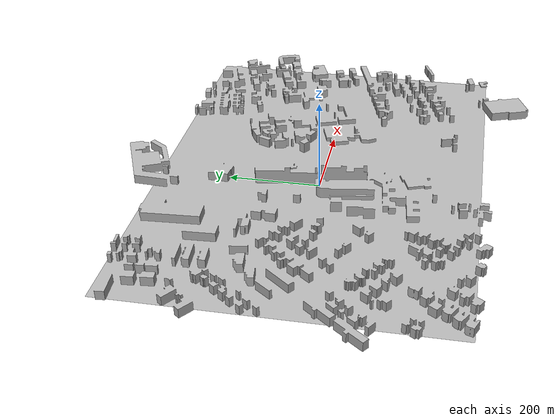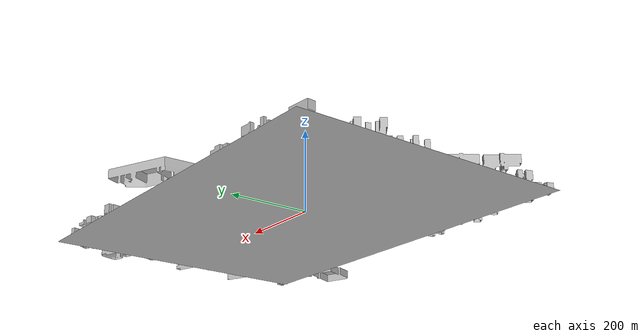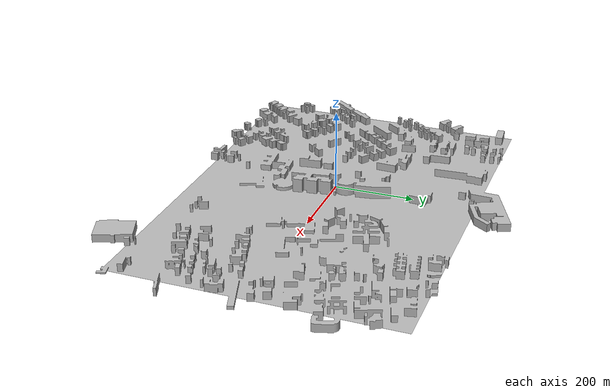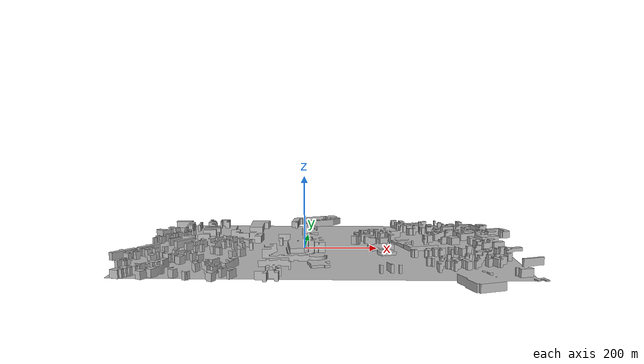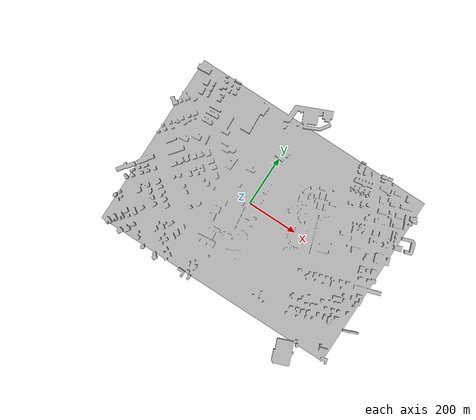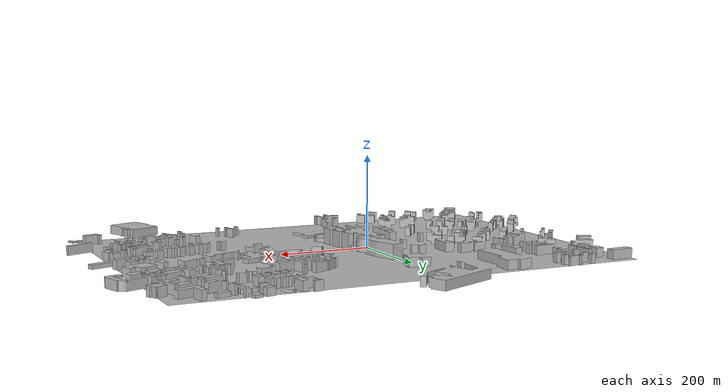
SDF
<?xml version="1.0"?>
<sdf version="1.6">
  <model name="frami">
    <pose>0 0 0 0 0 0</pose>
    <static>true</static>
    <link name="base_link">
      <visual name="visual">
        <pose>0 0 0 0 0 0</pose>
        <geometry>
          <mesh>
            <uri>frami.dae</uri>
            <scale>0.46 0.46 1.0</scale>
          </mesh>
        </geometry>
      </visual>
      <collision name="collision">
        <pose>0 0 0 0 0 0</pose>
        <geometry>
          <mesh>
            <uri>frami.dae</uri>
            <scale>0.46 0.46 1.0</scale>
          </mesh>
        </geometry>
      </collision>
      <inertial>
        <mass>1.0</mass>
        <inertia>
            <ixx>0.001</ixx>
            <ixy>0.0</ixy>
            <ixz>0.0</ixz>
            <iyy>0.001</iyy>
            <iyz>0.0</iyz>
            <izz>0.001</izz>
        </inertia>
      </inertial>
    </link>
  </model>
</sdf>
